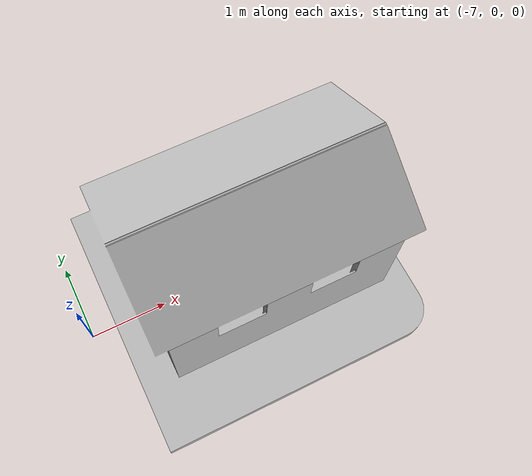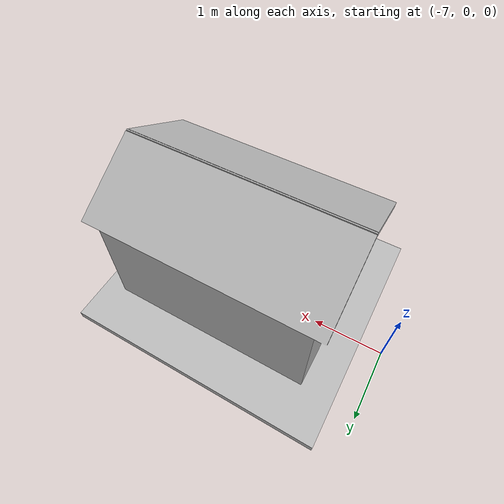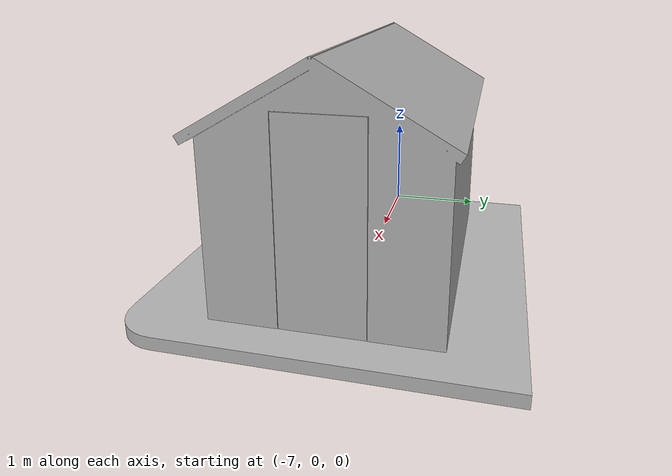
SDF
<?xml version="1.0" ?>
<sdf version="1.6">
  <world name="default">
    <include>
      <uri>model://template</uri>
      <pose>0 0 0 0 0 0</pose>
    </include>
  </world>
</sdf>

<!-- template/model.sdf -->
<sdf version="1.6">
  <model name="simple_box">
    <static>true</static>
    <link name="link">
      <visual name="visual">
        <geometry>
          <mesh>
            <uri>model://template/meshes/template.dae</uri>
          </mesh>
        </geometry>
      </visual>
    </link>
  </model>
</sdf>
